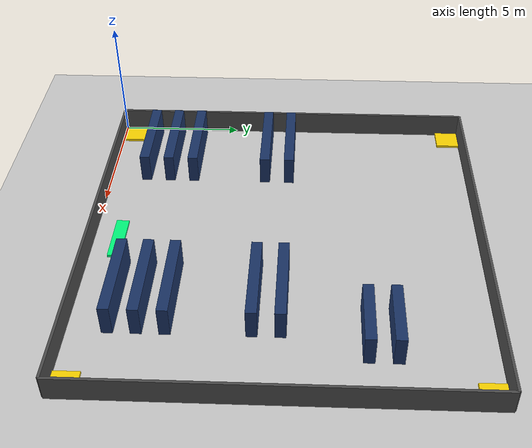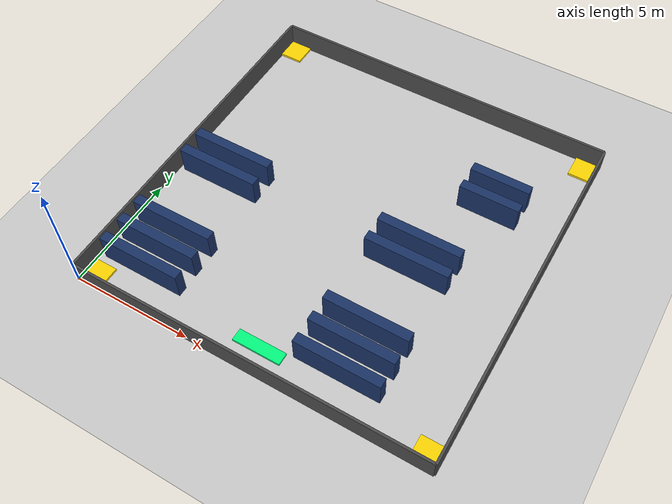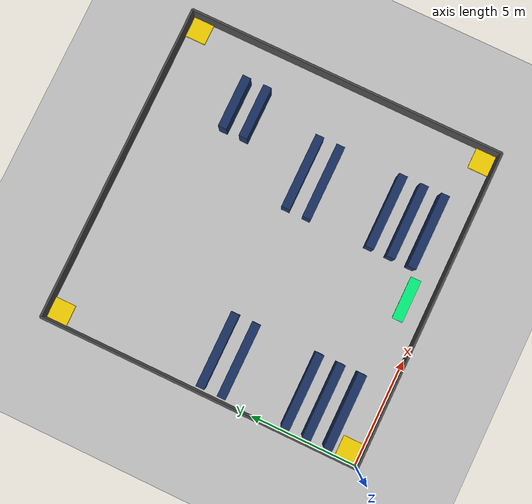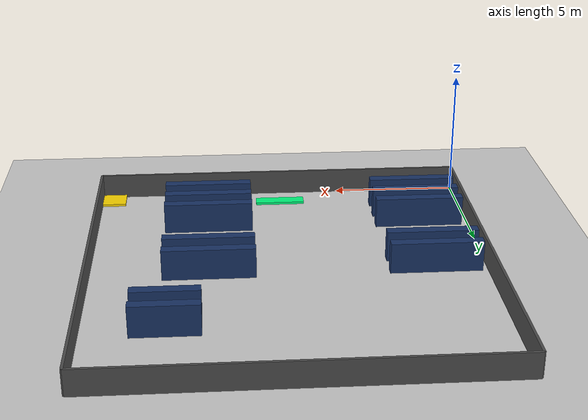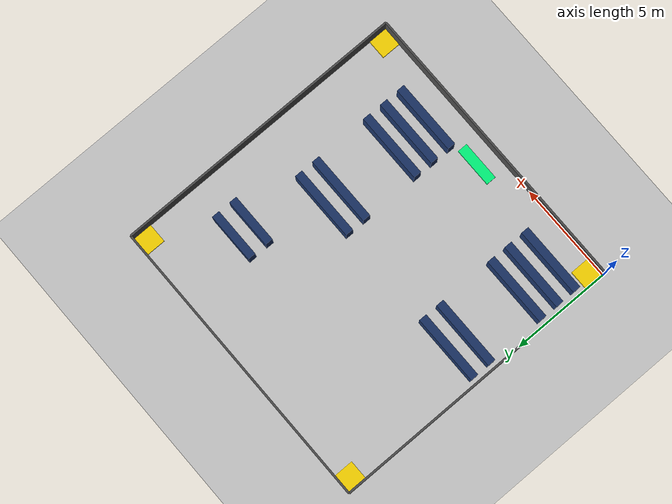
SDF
<?xml version="1.0" ?>
<sdf version="1.6">
  <world name="warex_warehouse">

    <!-- Lighting -->
    <include><uri>model://sun</uri></include>
    <include>
      <uri>model://ground_plane</uri>
    </include>

    <!-- Warehouse floor (30x30 grid, each cell = 0.5m → 15x15m total) -->

    <!-- OUTER WALLS -->
    <model name="wall_north">
      <static>true</static>
      <pose>7.5 15 0.5 0 0 0</pose>
      <link name="link">
        <collision name="col"><geometry><box><size>15 0.1 1</size></box></geometry></collision>
        <visual name="vis"><geometry><box><size>15 0.1 1</size></box></geometry>
          <material><ambient>0.3 0.3 0.3 1</ambient></material></visual>
      </link>
    </model>

    <model name="wall_south">
      <static>true</static>
      <pose>7.5 0 0.5 0 0 0</pose>
      <link name="link">
        <collision name="col"><geometry><box><size>15 0.1 1</size></box></geometry></collision>
        <visual name="vis"><geometry><box><size>15 0.1 1</size></box></geometry>
          <material><ambient>0.3 0.3 0.3 1</ambient></material></visual>
      </link>
    </model>

    <model name="wall_west">
      <static>true</static>
      <pose>0 7.5 0.5 0 0 1.5708</pose>
      <link name="link">
        <collision name="col"><geometry><box><size>15 0.1 1</size></box></geometry></collision>
        <visual name="vis"><geometry><box><size>15 0.1 1</size></box></geometry>
          <material><ambient>0.3 0.3 0.3 1</ambient></material></visual>
      </link>
    </model>

    <model name="wall_east">
      <static>true</static>
      <pose>15 7.5 0.5 0 0 1.5708</pose>
      <link name="link">
        <collision name="col"><geometry><box><size>15 0.1 1</size></box></geometry></collision>
        <visual name="vis"><geometry><box><size>15 0.1 1</size></box></geometry>
          <material><ambient>0.3 0.3 0.3 1</ambient></material></visual>
      </link>
    </model>

    <!-- TOP-LEFT SHELF BLOCK (grid x:3-10, y:3/5/7 → world x:1.5-5, y:1.5/2.5/3.5) -->
    <model name="shelf_tl_row1">
      <static>true</static>
      <pose>2.0 1.5 0.6 0 0 0</pose>
      <link name="link">
        <collision name="col"><geometry><box><size>3.5 0.4 1.2</size></box></geometry></collision>
        <visual name="vis"><geometry><box><size>3.5 0.4 1.2</size></box></geometry>
          <material><ambient>0.1 0.2 0.4 1</ambient></material></visual>
      </link>
    </model>
    <model name="shelf_tl_row2">
      <static>true</static>
      <pose>2.0 2.5 0.6 0 0 0</pose>
      <link name="link">
        <collision name="col"><geometry><box><size>3.5 0.4 1.2</size></box></geometry></collision>
        <visual name="vis"><geometry><box><size>3.5 0.4 1.2</size></box></geometry>
          <material><ambient>0.1 0.2 0.4 1</ambient></material></visual>
      </link>
    </model>
    <model name="shelf_tl_row3">
      <static>true</static>
      <pose>2.0 3.5 0.6 0 0 0</pose>
      <link name="link">
        <collision name="col"><geometry><box><size>3.5 0.4 1.2</size></box></geometry></collision>
        <visual name="vis"><geometry><box><size>3.5 0.4 1.2</size></box></geometry>
          <material><ambient>0.1 0.2 0.4 1</ambient></material></visual>
      </link>
    </model>

    <!-- TOP-RIGHT SHELF BLOCK -->
    <model name="shelf_tr_row1">
      <static>true</static>
      <pose>10.5 1.5 0.6 0 0 0</pose>
      <link name="link">
        <collision name="col"><geometry><box><size>3.5 0.4 1.2</size></box></geometry></collision>
        <visual name="vis"><geometry><box><size>3.5 0.4 1.2</size></box></geometry>
          <material><ambient>0.1 0.2 0.4 1</ambient></material></visual>
      </link>
    </model>
    <model name="shelf_tr_row2">
      <static>true</static>
      <pose>10.5 2.5 0.6 0 0 0</pose>
      <link name="link">
        <collision name="col"><geometry><box><size>3.5 0.4 1.2</size></box></geometry></collision>
        <visual name="vis"><geometry><box><size>3.5 0.4 1.2</size></box></geometry>
          <material><ambient>0.1 0.2 0.4 1</ambient></material></visual>
      </link>
    </model>
    <model name="shelf_tr_row3">
      <static>true</static>
      <pose>10.5 3.5 0.6 0 0 0</pose>
      <link name="link">
        <collision name="col"><geometry><box><size>3.5 0.4 1.2</size></box></geometry></collision>
        <visual name="vis"><geometry><box><size>3.5 0.4 1.2</size></box></geometry>
          <material><ambient>0.1 0.2 0.4 1</ambient></material></visual>
      </link>
    </model>

    <!-- MID-LEFT SHELVES -->
    <model name="shelf_ml_row1">
      <static>true</static>
      <pose>2.0 6.5 0.6 0 0 0</pose>
      <link name="link">
        <collision name="col"><geometry><box><size>3.5 0.4 1.2</size></box></geometry></collision>
        <visual name="vis"><geometry><box><size>3.5 0.4 1.2</size></box></geometry>
          <material><ambient>0.1 0.2 0.4 1</ambient></material></visual>
      </link>
    </model>
    <model name="shelf_ml_row2">
      <static>true</static>
      <pose>2.0 7.5 0.6 0 0 0</pose>
      <link name="link">
        <collision name="col"><geometry><box><size>3.5 0.4 1.2</size></box></geometry></collision>
        <visual name="vis"><geometry><box><size>3.5 0.4 1.2</size></box></geometry>
          <material><ambient>0.1 0.2 0.4 1</ambient></material></visual>
      </link>
    </model>

    <!-- MID-RIGHT SHELVES -->
    <model name="shelf_mr_row1">
      <static>true</static>
      <pose>10.5 6.5 0.6 0 0 0</pose>
      <link name="link">
        <collision name="col"><geometry><box><size>3.5 0.4 1.2</size></box></geometry></collision>
        <visual name="vis"><geometry><box><size>3.5 0.4 1.2</size></box></geometry>
          <material><ambient>0.1 0.2 0.4 1</ambient></material></visual>
      </link>
    </model>
    <model name="shelf_mr_row2">
      <static>true</static>
      <pose>10.5 7.5 0.6 0 0 0</pose>
      <link name="link">
        <collision name="col"><geometry><box><size>3.5 0.4 1.2</size></box></geometry></collision>
        <visual name="vis"><geometry><box><size>3.5 0.4 1.2</size></box></geometry>
          <material><ambient>0.1 0.2 0.4 1</ambient></material></visual>
      </link>
    </model>

    <!-- BOTTOM-RIGHT SHELVES -->
    <model name="shelf_br_row1">
      <static>true</static>
      <pose>12.0 10.5 0.6 0 0 0</pose>
      <link name="link">
        <collision name="col"><geometry><box><size>2.5 0.4 1.2</size></box></geometry></collision>
        <visual name="vis"><geometry><box><size>2.5 0.4 1.2</size></box></geometry>
          <material><ambient>0.1 0.2 0.4 1</ambient></material></visual>
      </link>
    </model>
    <model name="shelf_br_row2">
      <static>true</static>
      <pose>12.0 11.5 0.6 0 0 0</pose>
      <link name="link">
        <collision name="col"><geometry><box><size>2.5 0.4 1.2</size></box></geometry></collision>
        <visual name="vis"><geometry><box><size>2.5 0.4 1.2</size></box></geometry>
          <material><ambient>0.1 0.2 0.4 1</ambient></material></visual>
      </link>
    </model>

    <!-- CHARGING DOCKS — 4 corners, yellow markers -->
    <model name="dock_tl">
      <static>true</static>
      <pose>0.5 14.5 0.05 0 0 0</pose>
      <link name="link">
        <visual name="vis"><geometry><box><size>1 1 0.1</size></box></geometry>
          <material><ambient>1 0.85 0 1</ambient></material></visual>
      </link>
    </model>
    <model name="dock_tr">
      <static>true</static>
      <pose>14.5 14.5 0.05 0 0 0</pose>
      <link name="link">
        <visual name="vis"><geometry><box><size>1 1 0.1</size></box></geometry>
          <material><ambient>1 0.85 0 1</ambient></material></visual>
      </link>
    </model>
    <model name="dock_bl">
      <static>true</static>
      <pose>0.5 0.5 0.05 0 0 0</pose>
      <link name="link">
        <visual name="vis"><geometry><box><size>1 1 0.1</size></box></geometry>
          <material><ambient>1 0.85 0 1</ambient></material></visual>
      </link>
    </model>
    <model name="dock_br">
      <static>true</static>
      <pose>14.5 0.5 0.05 0 0 0</pose>
      <link name="link">
        <visual name="vis"><geometry><box><size>1 1 0.1</size></box></geometry>
          <material><ambient>1 0.85 0 1</ambient></material></visual>
      </link>
    </model>

    <!-- DROP ZONE — center bottom, green marker -->
    <model name="drop_zone">
      <static>true</static>
      <pose>7.5 1.0 0.05 0 0 0</pose>
      <link name="link">
        <visual name="vis"><geometry><box><size>2 0.5 0.1</size></box></geometry>
          <material><ambient>0 1 0.5 1</ambient></material></visual>
      </link>
    </model>

  </world>
</sdf>
